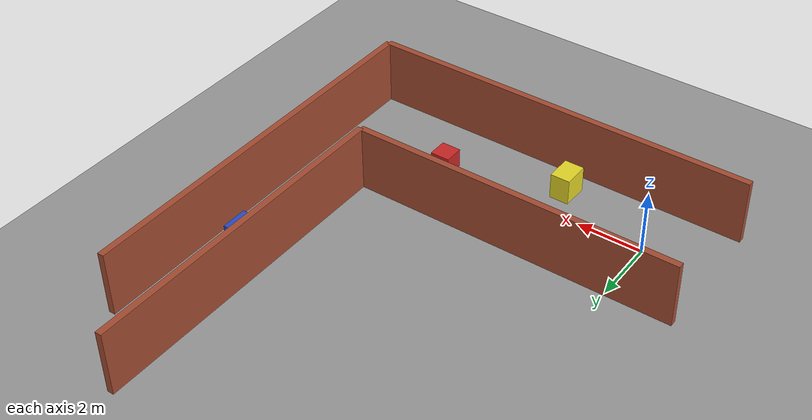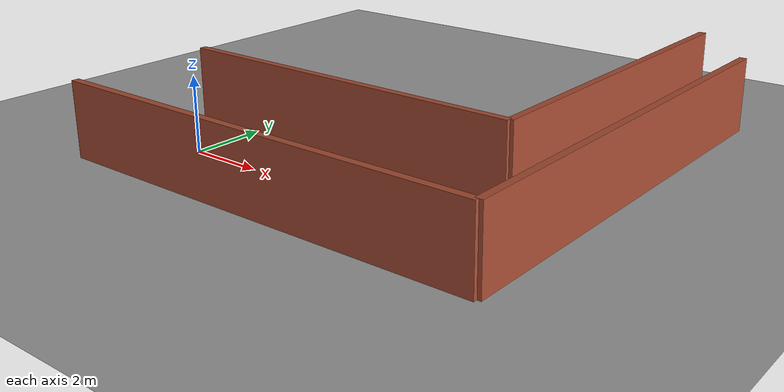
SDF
<?xml version="1.0" ?>
<sdf version="1.6">
  <world name="l_maze">
    <include><uri>model://sun</uri></include>
    <plugin name="gazebo_ros_state" filename="libgazebo_ros_state.so">
      <ros><namespace>/gazebo</namespace></ros>
      <update_rate>50.0</update_rate>
    </plugin>

    <model name="floor">
      <static>true</static>
      <link name="link">
        <collision name="collision"><geometry><plane><normal>0 0 1</normal><size>30 30</size></plane></geometry></collision>
        <visual name="visual"><geometry><plane><normal>0 0 1</normal><size>30 30</size></plane></geometry><material><script><uri>file://media/materials/scripts/gazebo.material</uri><name>Gazebo/Grey</name></script></material></visual>
      </link>
    </model>

    <model name="wall_south"><pose>4.0 -2.0 1.0 0 0 0</pose><static>true</static><link name="link"><collision name="collision"><geometry><box><size>12.0 0.2 2.0</size></box></geometry></collision><visual name="visual"><geometry><box><size>12.0 0.2 2.0</size></box></geometry><material><script><uri>file://media/materials/scripts/gazebo.material</uri><name>Gazebo/Bricks</name></script></material></visual></link></model>

    <model name="wall_north"><pose>3.0 2.0 1.0 0 0 0</pose><static>true</static><link name="link"><collision name="collision"><geometry><box><size>10.0 0.2 2.0</size></box></geometry></collision><visual name="visual"><geometry><box><size>10.0 0.2 2.0</size></box></geometry><material><script><uri>file://media/materials/scripts/gazebo.material</uri><name>Gazebo/Bricks</name></script></material></visual></link></model>

    <model name="wall_east"><pose>10.0 4.0 1.0 0 0 1.5707</pose><static>true</static><link name="link"><collision name="collision"><geometry><box><size>12.0 0.2 2.0</size></box></geometry></collision><visual name="visual"><geometry><box><size>12.0 0.2 2.0</size></box></geometry><material><script><uri>file://media/materials/scripts/gazebo.material</uri><name>Gazebo/Bricks</name></script></material></visual></link></model>

    <model name="wall_west"><pose>8.0 7.0 1.0 0 0 1.5707</pose><static>true</static><link name="link"><collision name="collision"><geometry><box><size>10.0 0.2 2.0</size></box></geometry></collision><visual name="visual"><geometry><box><size>10.0 0.2 2.0</size></box></geometry><material><script><uri>file://media/materials/scripts/gazebo.material</uri><name>Gazebo/Bricks</name></script></material></visual></link></model>

    <model name='obstacle_safe_1'>
      <pose>3.0 -1.0 0.4 0 0 0</pose>
      <static>1</static>
      <link name='link'>
        <collision name='collision'><geometry><box><size>0.6 0.8 0.8</size></box></geometry></collision>
        <visual name='visual'><geometry><box><size>0.6 0.8 0.8</size></box></geometry><material><script><uri>file://media/materials/scripts/gazebo.material</uri><name>Gazebo/Yellow</name></script></material></visual>
      </link>
    </model>

    <model name='obstacle_safe_2'>
      <pose>9.0 6.0 0.4 0 0 0</pose>
      <static>1</static>
      <link name='link'>
        <collision name='collision'><geometry><box><size>0.6 0.8 0.8</size></box></geometry></collision>
        <visual name='visual'><geometry><box><size>0.6 0.8 0.8</size></box></geometry><material><script><uri>file://media/materials/scripts/gazebo.material</uri><name>Gazebo/Blue</name></script></material></visual>
      </link>
    </model>

    <model name='obstacle_danger'>
      <pose>6.5 0.0 0.3 0 0 0</pose>
      <static>0</static>
      <link name='link'>
        <inertial><mass>1.0</mass><inertia><ixx>0.1</ixx><ixy>0</ixy><ixz>0</ixz><iyy>0.1</iyy><iyz>0</iyz><izz>0.1</izz></inertia></inertial>
        <collision name='collision'><geometry><box><size>0.6 0.6 0.6</size></box></geometry></collision>
        <visual name='visual'><geometry><box><size>0.6 0.6 0.6</size></box></geometry><material><script><uri>file://media/materials/scripts/gazebo.material</uri><name>Gazebo/RedBright</name></script></material></visual>
      </link>
      <plugin name="gazebo_ros_planar_move" filename="libgazebo_ros_planar_move.so">
        <ros><namespace>/</namespace><remapping>cmd_vel:=actor_cmd_vel</remapping><remapping>odom:=actor_odom</remapping></ros>
        <update_rate>50.0</update_rate><publish_rate>20.0</publish_rate>
        <publish_odom>true</publish_odom><publish_odom_tf>false</publish_odom_tf>
        <odometry_frame>odom</odometry_frame><robot_base_frame>link</robot_base_frame>
      </plugin>
    </model>

  </world>
</sdf>
